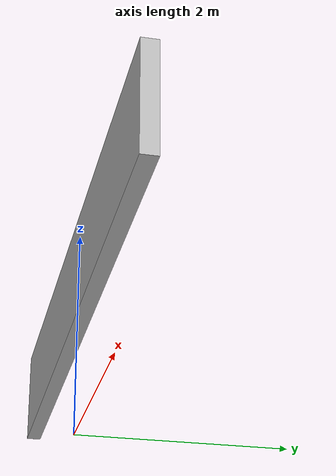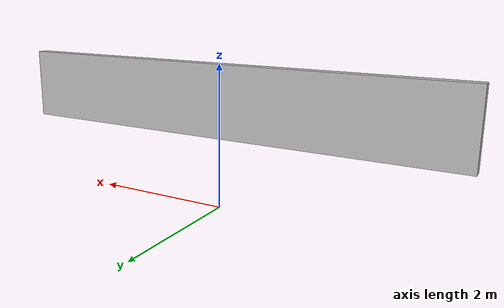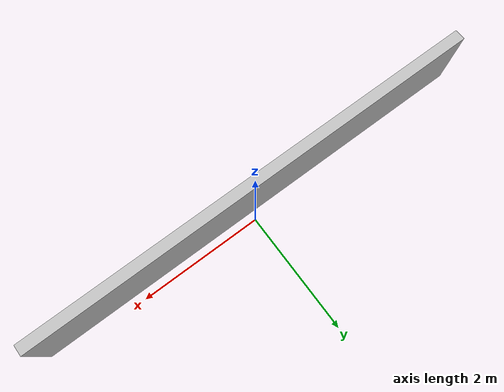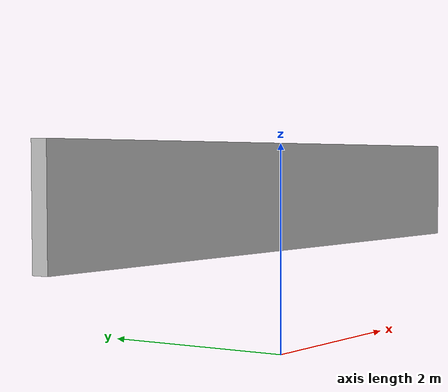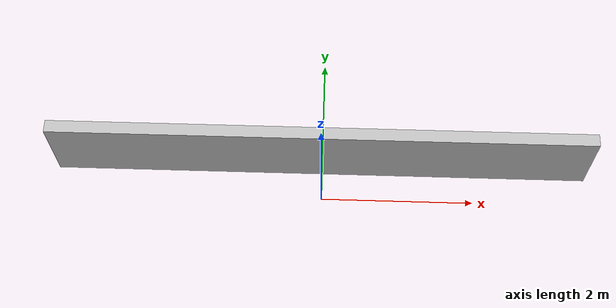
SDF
<?xml version="1.0" ?>
<sdf version="1.5">
  <model name="brick_box_3x1x3">
    <static>true</static>
    <link name="chassis">
      <pose>0 0 1.5 0 0 0</pose>
      <collision name="collision">
        <geometry>
          <box>
            <size>6.5 0.15 1</size>
          </box>
        </geometry>
      </collision>
      <visual name="visual">
        <geometry>
          <mesh>
            <uri>model://brick_box_3x1x3/meshes/simple_box.dae</uri>
            <scale>6.5 0.15 1</scale>
          </mesh>
        </geometry>
        <material>
          <script>
            <uri>model://brick_box_3x1x3/materials/scripts</uri>
            <uri>model://brick_box_3x1x3/materials/textures</uri>
            <name>BrickBox/Diffuse</name>
          </script>
        </material>
      </visual>
    </link>
  </model>
</sdf>
